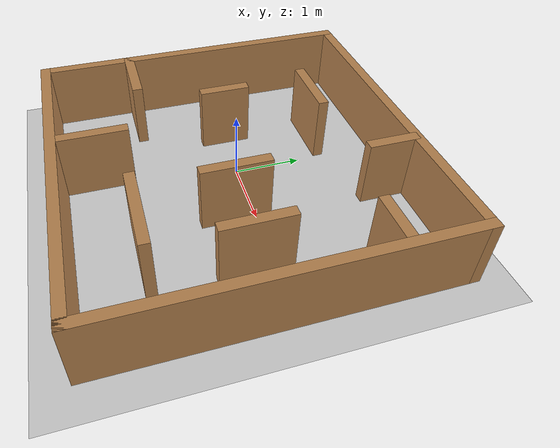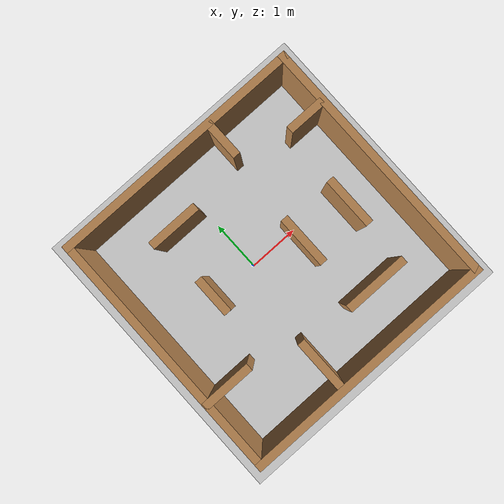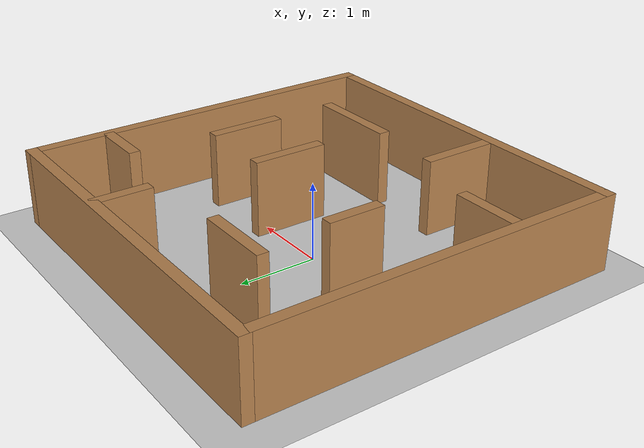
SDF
<sdf version="1.7">
 <world name="default">
  <light name="sun" type="directional">
   <pose>0 0 10 0 -0 0</pose>
   <diffuse>0.8 0.8 0.8 1</diffuse>
   <specular>0.2 0.2 0.2 1</specular>
   <attenuation>
    <range>1000</range>
    <constant>0.9</constant>
    <linear>0.01</linear>
    <quadratic>0.001</quadratic>
   </attenuation>
   <direction>-0.5 0.1 -0.9</direction>
   <spot><inner_angle>0</inner_angle><outer_angle>0</outer_angle><falloff>0</falloff></spot>
  </light>
  <model name="ground_plane">
   <static>1</static>
   <link name="link">
    <collision name="collision">
     <geometry><plane><normal>0 0 1</normal><size>100 100</size></plane></geometry>
     <surface>
      <contact><collide_bitmask>65535</collide_bitmask></contact>
      <friction><ode><mu>100</mu><mu2>50</mu2></ode></friction>
     </surface>
    </collision>
    <visual name="visual">
     <cast_shadows>0</cast_shadows>
     <geometry><plane><normal>0 0 1</normal><size>100 100</size></plane></geometry>
     <material>
      <script><uri>file://media/materials/scripts/gazebo.material</uri><name>Gazebo/Grey</name></script>
     </material>
    </visual>
   </link>
  </model>
  <gravity>0 0 -9.8</gravity>
  <magnetic_field>6e-06 2.3e-05 -4.2e-05</magnetic_field>
  <atmosphere type="adiabatic"/>
  <physics type="ode">
   <max_step_size>0.001</max_step_size>
   <real_time_factor>1</real_time_factor>
   <real_time_update_rate>1000</real_time_update_rate>
  </physics>
  <scene><ambient>0.4 0.4 0.4 1</ambient><background>0.7 0.7 0.7 1</background><shadows>1</shadows></scene>
  <audio><device>default</device></audio>
  <spherical_coordinates>
   <surface_model>EARTH_WGS84</surface_model>
   <latitude_deg>0</latitude_deg>
   <longitude_deg>0</longitude_deg>
   <elevation>0</elevation>
   <heading_deg>0</heading_deg>
  </spherical_coordinates>
  <model name="simple_maze">
   <pose>0.332 -0.153 0 0 -0 0</pose>
   <link name="Wall_18">
    <collision name="Wall_18_Collision">
     <geometry><box><size>0.75 0.15 1</size></box></geometry>
     <pose>0 0 0.5 0 -0 0</pose>
    </collision>
    <visual name="Wall_18_Visual">
     <pose>0 0 0.5 0 -0 0</pose>
     <geometry><box><size>0.75 0.15 1</size></box></geometry>
     <material>
      <script><uri>file://media/materials/scripts/gazebo.material</uri><name>Gazebo/Wood</name></script>
      <ambient>1 1 1 1</ambient>
     </material>
     <meta><layer>0</layer></meta>
    </visual>
    <pose>2.042 1.421 0 0 -0 3.14159</pose>
   </link>
   <link name="Wall_20">
    <collision name="Wall_20_Collision">
     <geometry><box><size>0.75 0.15 1</size></box></geometry>
     <pose>0 0 0.5 0 -0 0</pose>
    </collision>
    <visual name="Wall_20_Visual">
     <pose>0 0 0.5 0 -0 0</pose>
     <geometry><box><size>0.75 0.15 1</size></box></geometry>
     <material>
      <script><uri>file://media/materials/scripts/gazebo.material</uri><name>Gazebo/Wood</name></script>
      <ambient>1 1 1 1</ambient>
     </material>
     <meta><layer>0</layer></meta>
    </visual>
    <pose>0.715 2.069 0 0 -0 -1.5708</pose>
   </link>
   <link name="Wall_22">
    <collision name="Wall_22_Collision">
     <geometry><box><size>1 0.15 1</size></box></geometry>
     <pose>0 0 0.5 0 -0 0</pose>
    </collision>
    <visual name="Wall_22_Visual">
     <pose>0 0 0.5 0 -0 0</pose>
     <geometry><box><size>1 0.15 1</size></box></geometry>
     <material>
      <script><uri>file://media/materials/scripts/gazebo.material</uri><name>Gazebo/Wood</name></script>
      <ambient>1 1 1 1</ambient>
     </material>
     <meta><layer>0</layer></meta>
    </visual>
    <pose>-1.984 -1.089 0 0 -0 0</pose>
   </link>
   <link name="Wall_24">
    <collision name="Wall_24_Collision">
     <geometry><box><size>1 0.15 1</size></box></geometry>
     <pose>0 0 0.5 0 -0 0</pose>
    </collision>
    <visual name="Wall_24_Visual">
     <pose>0 0 0.5 0 -0 0</pose>
     <geometry><box><size>1 0.15 1</size></box></geometry>
     <material>
      <script><uri>file://media/materials/scripts/gazebo.material</uri><name>Gazebo/Wood</name></script>
      <ambient>1 1 1 1</ambient>
     </material>
     <meta><layer>0</layer></meta>
    </visual>
    <pose>-0.575 -1.857 0 0 -0 -1.5708</pose>
   </link>
   <link name="Wall_26">
    <collision name="Wall_26_Collision">
     <geometry><box><size>1.25 0.15 1</size></box></geometry>
     <pose>0 0 0.5 0 -0 0</pose>
    </collision>
    <visual name="Wall_26_Visual">
     <pose>0 0 0.5 0 -0 0</pose>
     <geometry><box><size>1.25 0.15 1</size></box></geometry>
     <material>
      <script><uri>file://media/materials/scripts/gazebo.material</uri><name>Gazebo/Wood</name></script>
      <ambient>1 1 1 1</ambient>
     </material>
     <meta><layer>0</layer></meta>
    </visual>
    <pose>1.016 -1.484 0 0 -0 0</pose>
   </link>
   <link name="Wall_28">
    <collision name="Wall_28_Collision">
     <geometry><box><size>1 0.15 1</size></box></geometry>
     <pose>0 0 0.5 0 -0 0</pose>
    </collision>
    <visual name="Wall_28_Visual">
     <pose>0 0 0.5 0 -0 0</pose>
     <geometry><box><size>1 0.15 1</size></box></geometry>
     <material>
      <script><uri>file://media/materials/scripts/gazebo.material</uri><name>Gazebo/Wood</name></script>
      <ambient>1 1 1 1</ambient>
     </material>
     <meta><layer>0</layer></meta>
    </visual>
    <pose>1.611 -0.153 0 0 -0 -1.5708</pose>
   </link>
   <link name="Wall_3">
    <collision name="Wall_3_Collision">
     <geometry><box><size>5 0.15 1</size></box></geometry>
     <pose>0 0 0.5 0 -0 0</pose>
    </collision>
    <visual name="Wall_3_Visual">
     <pose>0 0 0.5 0 -0 0</pose>
     <geometry><box><size>5 0.15 1</size></box></geometry>
     <material>
      <script><uri>file://media/materials/scripts/gazebo.material</uri><name>Gazebo/Wood</name></script>
      <ambient>1 1 1 1</ambient>
     </material>
     <meta><layer>0</layer></meta>
    </visual>
    <pose>-0 -2.425 0 0 -0 0</pose>
   </link>
   <link name="Wall_30">
    <collision name="Wall_30_Collision">
     <geometry><box><size>1 0.15 1</size></box></geometry>
     <pose>0 0 0.5 0 -0 0</pose>
    </collision>
    <visual name="Wall_30_Visual">
     <pose>0 0 0.5 0 -0 0</pose>
     <geometry><box><size>1 0.15 1</size></box></geometry>
     <material>
      <script><uri>file://media/materials/scripts/gazebo.material</uri><name>Gazebo/Wood</name></script>
      <ambient>1 1 1 1</ambient>
     </material>
     <meta><layer>0</layer></meta>
    </visual>
    <pose>-0.869 1.509 0 0 -0 0</pose>
   </link>
   <link name="Wall_34">
    <collision name="Wall_34_Collision">
     <geometry><box><size>0.75 0.15 1</size></box></geometry>
     <pose>0 0 0.5 0 -0 0</pose>
    </collision>
    <visual name="Wall_34_Visual">
     <pose>0 0 0.5 0 -0 0</pose>
     <geometry><box><size>0.75 0.15 1</size></box></geometry>
     <material>
      <script><uri>file://media/materials/scripts/gazebo.material</uri><name>Gazebo/Wood</name></script>
      <ambient>1 1 1 1</ambient>
     </material>
     <meta><layer>0</layer></meta>
    </visual>
    <pose>-1.1562 0.19335 0 0 -0 -1.5708</pose>
   </link>
   <link name="Wall_36">
    <collision name="Wall_36_Collision">
     <geometry><box><size>1 0.15 1</size></box></geometry>
     <pose>0 0 0.5 0 -0 0</pose>
    </collision>
    <visual name="Wall_36_Visual">
     <pose>0 0 0.5 0 -0 0</pose>
     <geometry><box><size>1 0.15 1</size></box></geometry>
     <material>
      <script><uri>file://media/materials/scripts/gazebo.material</uri><name>Gazebo/Wood</name></script>
      <ambient>1 1 1 1</ambient>
     </material>
     <meta><layer>0</layer></meta>
    </visual>
    <pose>0.6 -0.128 0 0 -0 -1.5708</pose>
   </link>
   <link name="Wall_5">
    <collision name="Wall_5_Collision">
     <geometry><box><size>5 0.15 1</size></box></geometry>
     <pose>0 0 0.5 0 -0 0</pose>
    </collision>
    <visual name="Wall_5_Visual">
     <pose>0 0 0.5 0 -0 0</pose>
     <geometry><box><size>5 0.15 1</size></box></geometry>
     <material>
      <script><uri>file://media/materials/scripts/gazebo.material</uri><name>Gazebo/Wood</name></script>
      <ambient>1 1 1 1</ambient>
     </material>
     <meta><layer>0</layer></meta>
    </visual>
    <pose>2.425 0 0 0 -0 1.5708</pose>
   </link>
   <link name="Wall_6">
    <collision name="Wall_6_Collision">
     <geometry><box><size>5 0.15 1</size></box></geometry>
     <pose>0 0 0.5 0 -0 0</pose>
    </collision>
    <visual name="Wall_6_Visual">
     <pose>0 0 0.5 0 -0 0</pose>
     <geometry><box><size>5 0.15 1</size></box></geometry>
     <material>
      <script><uri>file://media/materials/scripts/gazebo.material</uri><name>Gazebo/Wood</name></script>
      <ambient>1 1 1 1</ambient>
     </material>
     <meta><layer>0</layer></meta>
    </visual>
    <pose>-0 2.425 0 0 -0 3.14159</pose>
   </link>
   <link name="Wall_7">
    <collision name="Wall_7_Collision">
     <geometry><box><size>5 0.15 1</size></box></geometry>
     <pose>0 0 0.5 0 -0 0</pose>
    </collision>
    <visual name="Wall_7_Visual">
     <pose>0 0 0.5 0 -0 0</pose>
     <geometry><box><size>5 0.15 1</size></box></geometry>
     <material>
      <script><uri>file://media/materials/scripts/gazebo.material</uri><name>Gazebo/Wood</name></script>
      <ambient>1 1 1 1</ambient>
     </material>
     <meta><layer>0</layer></meta>
    </visual>
    <pose>-2.425 0 0 0 -0 -1.5708</pose>
   </link>
   <static>1</static>
  </model>
 </world>
</sdf>
